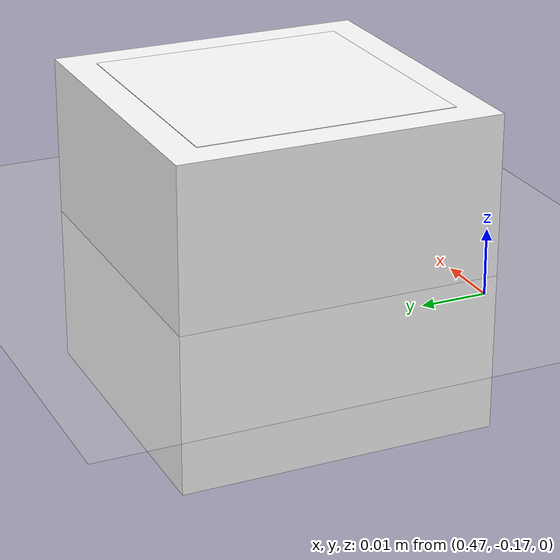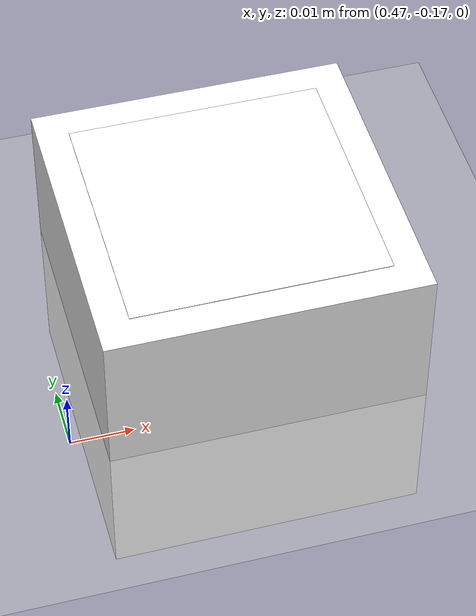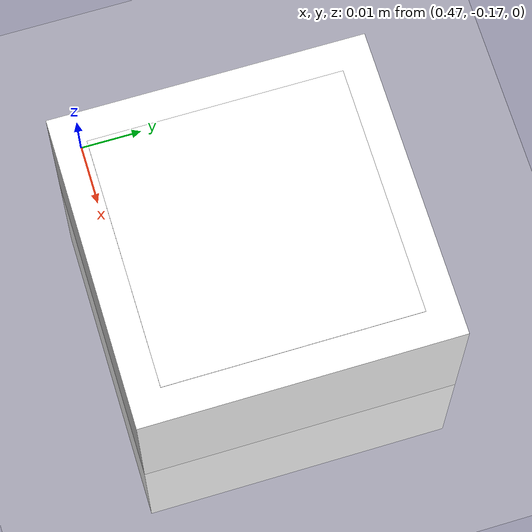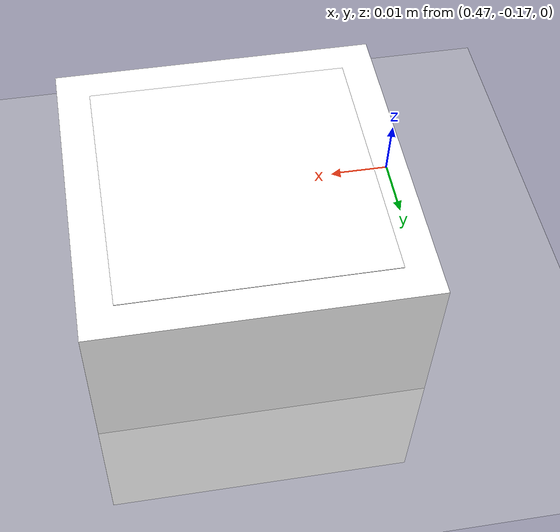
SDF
<?xml version="1.0" ?>
<sdf version="1.4">
  <world name="default">
    <physics type="ode">
      <gravity>0 0 -9.81</gravity>
      <ode>
        <solver>
          <type>quick</type>
          <iters>20</iters>
          <sor>1.0</sor>
        </solver>
        <constraints>
          <cfm>0.0</cfm>
          <erp>0.2</erp>
          <contact_max_correcting_vel>100.0</contact_max_correcting_vel>
          <contact_surface_layer>0.0</contact_surface_layer>
        </constraints>
      </ode>
      <real_time_update_rate>1000</real_time_update_rate>
      <max_step_size>0.001</max_step_size>
    </physics>
    <light type="directional" name="light1">
      <cast_shadows>true</cast_shadows>
      <pose>-2 0 4 0 0 0</pose>
      <diffuse>1.0 1.0 1.0 1</diffuse>
      <specular>0.1 0.1 0.1 1</specular>
      <attenuation>
        <range>20</range>
        <constant>0.9</constant>
        <linear>0.01</linear>
        <quadratic>0.001</quadratic>
      </attenuation>
      <direction>0.2 0.0 -1.0</direction>
    </light>
    <!-- A ground plane -->
    <include>
      <uri>model://ground_plane</uri>
    </include>

    <include>
      <uri>model://aruco_cube</uri>
      <pose>0.50 -0.15 0.0 0 0 0</pose>
    </include>

    <gui fullscreen="0">
      <camera name="user_camera">
        <pose>1.152670 -0.041479 3.496780 0.000000 1.123640 3.132190</pose>
        <view_controller>orbit</view_controller>
      </camera>
    </gui>
  </world>
</sdf>

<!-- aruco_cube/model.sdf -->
<sdf version='1.10'>
  <model name='aruco_cube'>
    <link name="cube_link">
        <collision name="cube_collision">
            <geometry>
                <box>
                <size>0.05 0.05 0.05</size>
                </box>
            </geometry>

            <surface>
                <friction>
                <ode>
                    <mu>15</mu>
                    <mu2>15</mu2>
                </ode>
                </friction>
            </surface>
        </collision>

        <inertial>
            <mass>0.05</mass>
            <inertia>
                <ixx>0.000018</ixx>
                <iyy>0.000018</iyy>
                <izz>0.000018</izz>
                <ixy>0</ixy>
                <ixz>0</ixz>
                <iyz>0</iyz>
            </inertia>
        </inertial>

        <visual name="cube_visual">
            <geometry>
                <box>
                <size>0.05 0.05 0.05</size>
                </box>
            </geometry>
            <material>
                <ambient>1 1 1 1</ambient>
                <diffuse>1 1 1 1</diffuse>
                <specular>0.1 0.1 0.1 1</specular>
            </material>
        </visual>

        <visual name="aruco_top_visual">
            <pose>0 0 0.0251 0 0 0</pose>
            <geometry>
                <box>
                    <size>0.04 0.04 0.0001</size>
                </box>
            </geometry>
            <material>
                <ambient>1 1 1 1</ambient>
                <diffuse>1 1 1 1</diffuse>
                <pbr>
                    <metal>
                        <albedo_map>
                            material/textures/aruco_0.png
                        </albedo_map>
                        <roughness>1.0</roughness>
                        <metalness>0.0</metalness>
                    </metal>
                </pbr>
            </material>
        </visual>

    </link>
  </model>
</sdf>
